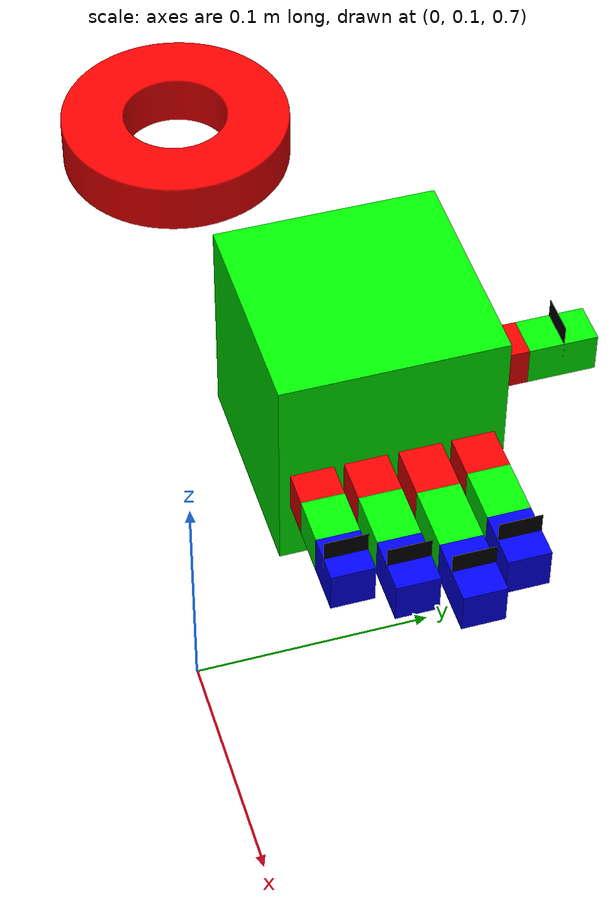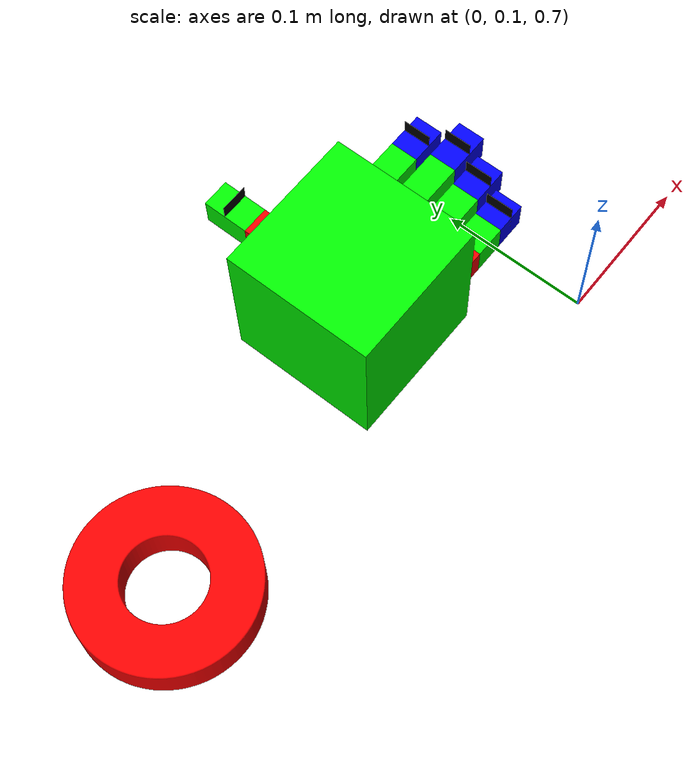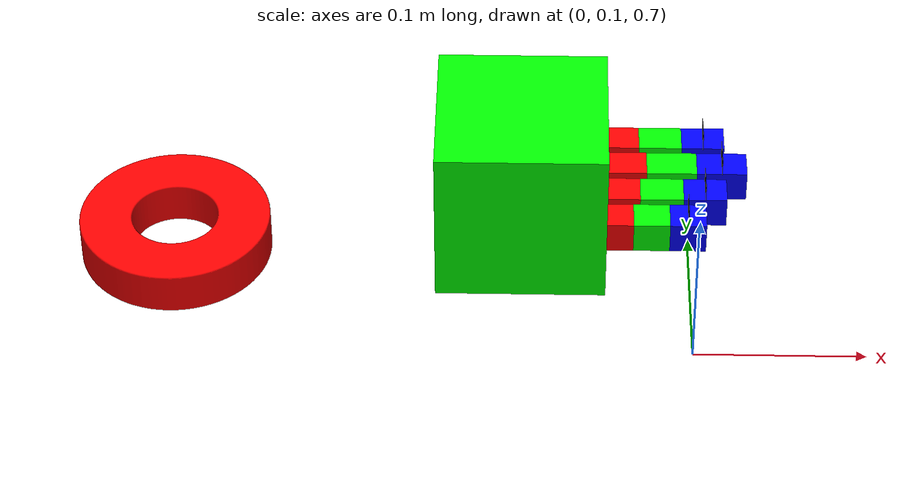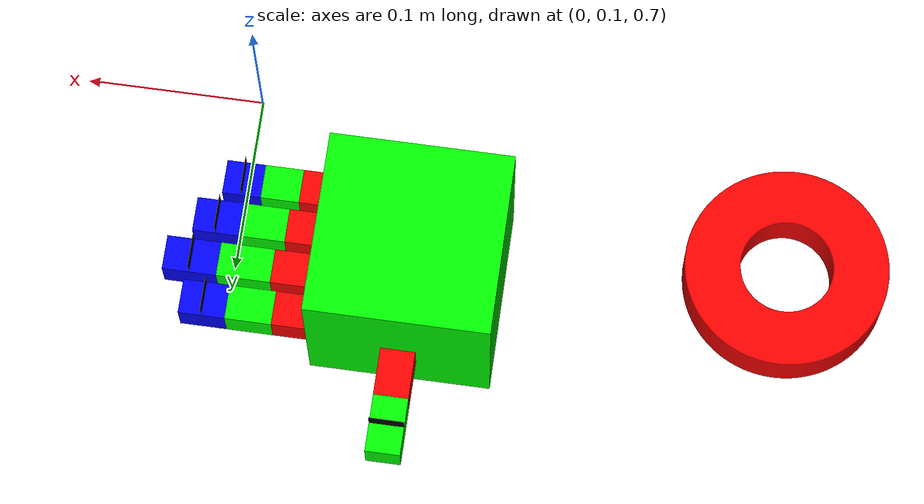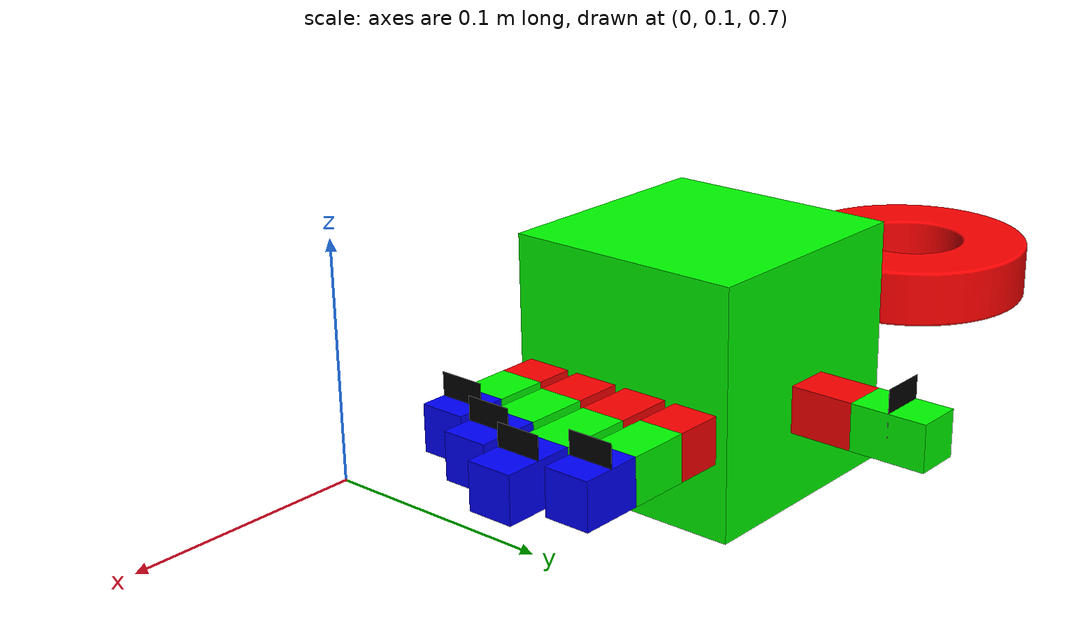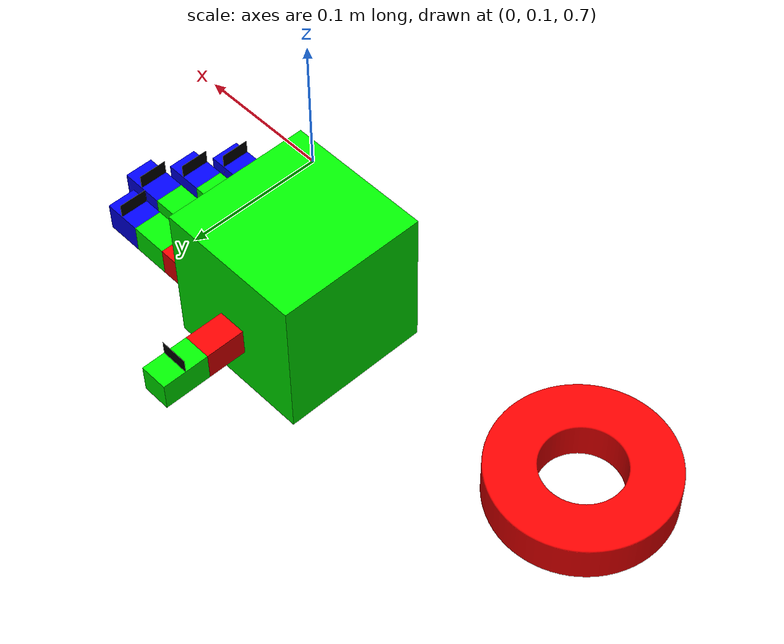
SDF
<sdf version="1.9">
 <world name="Rings">
  <model name="ground_plane">
   <static>true</static>
   <link name="link">
    <collision name="collision">
     <geometry><plane><normal>0 0 1</normal><size>100 100</size></plane></geometry>
    </collision>
    <visual name="visual">
     <geometry><plane><normal>0 0 1</normal><size>100 100</size></plane></geometry>
     <material>
      <ambient>0.8 0.8 0.8 1</ambient>
      <diffuse>0.8 0.8 0.8 1</diffuse>
      <specular>0.8 0.8 0.8 1</specular>
     </material>
    </visual>
    <inertial>
     <mass>1</mass>
     <inertia><ixx>1</ixx><ixy>0</ixy><ixz>0</ixz><iyy>1</iyy><iyz>0</iyz><izz>1</izz></inertia>
    </inertial>
   </link>
  </model>
  <model name="Ring_2">
   <link name="link">
    <visual name="visual">
     <geometry>
      <mesh>
       <uri>file:///home/alves/Documents/Classes/Fall23/MECH495/FinalProject/groupWS/install/teleop_tasks/share/teleop_tasks/worlds/../models/Ring.stl</uri>
      </mesh>
     </geometry>
     <material>
      <ambient>1 0 0 1</ambient>
      <diffuse>1 0 0 1</diffuse>
      <specular>0 0 0 0</specular>
      <emissive>0 0 0 1</emissive>
     </material>
    </visual>
    <collision name="collision">
     <geometry>
      <mesh>
       <uri>file:///home/alves/Documents/Classes/Fall23/MECH495/FinalProject/groupWS/install/teleop_tasks/share/teleop_tasks/worlds/../models/SimpleRing.stl</uri>
      </mesh>
     </geometry>
    </collision>
    <inertial>
     <mass>1</mass>
     <inertia><ixx>1</ixx><ixy>0</ixy><ixz>0</ixz><iyy>1</iyy><iyz>0</iyz><izz>1</izz></inertia>
    </inertial>
   </link>
   <pose>-0.30292 0.171223 0.715 0 -0 -0</pose>
   <static>false</static>
  </model>
  <model name="left_hand">
   <joint name="palm_x" type="prismatic">
    <parent>world</parent>
    <child>world_2</child>
    <axis>
     <xyz>1 0 0</xyz>
     <limit>
      <lower>-15</lower>
      <upper>15</upper>
      <effort>1000</effort>
      <velocity>30</velocity>
      <stiffness>100000000</stiffness>
      <dissipation>1</dissipation>
     </limit>
     <dynamics>
      <spring_reference>0</spring_reference>
      <spring_stiffness>0</spring_stiffness>
      <damping>0</damping>
      <friction>0</friction>
     </dynamics>
    </axis>
   </joint>
   <link name="world_2">
    <inertial>
     <mass>1.0000000000000001e-05</mass>
     <inertia>
      <ixx>3.3333300000000001e-07</ixx>
      <ixy>0</ixy>
      <ixz>0</ixz>
      <iyy>5.2416699999999997e-06</iyy>
      <iyz>0</iyz>
      <izz>5.5083299999999998e-06</izz>
     </inertia>
    </inertial>
    <visual name="world_2_visual">
     <geometry><box><size>0.1 0.1 0.1</size></box></geometry>
     <material><diffuse>0 1 0 0</diffuse><ambient>0 1 0 0</ambient></material>
    </visual>
   </link>
   <joint name="palm_y" type="prismatic">
    <parent>world_2</parent>
    <child>world_3</child>
    <axis>
     <xyz>0 1 0</xyz>
     <limit>
      <lower>-15</lower>
      <upper>15</upper>
      <effort>1000</effort>
      <velocity>30</velocity>
      <stiffness>100000000</stiffness>
      <dissipation>1</dissipation>
     </limit>
     <dynamics>
      <spring_reference>0</spring_reference>
      <spring_stiffness>0</spring_stiffness>
      <damping>0</damping>
      <friction>0</friction>
     </dynamics>
    </axis>
   </joint>
   <link name="world_3">
    <inertial>
     <mass>1.0000000000000001e-05</mass>
     <inertia>
      <ixx>3.3333300000000001e-07</ixx>
      <ixy>0</ixy>
      <ixz>0</ixz>
      <iyy>5.2416699999999997e-06</iyy>
      <iyz>0</iyz>
      <izz>5.5083299999999998e-06</izz>
     </inertia>
    </inertial>
    <visual name="world_3_visual">
     <geometry><box><size>0.1 0.1 0.1</size></box></geometry>
     <material><diffuse>0 1 0 0</diffuse><ambient>0 1 0 0</ambient></material>
    </visual>
   </link>
   <joint name="palm_z" type="prismatic">
    <parent>world_3</parent>
    <child>world_4</child>
    <axis>
     <xyz>0 0 1</xyz>
     <limit>
      <lower>-15</lower>
      <upper>15</upper>
      <effort>1000</effort>
      <velocity>30</velocity>
      <stiffness>100000000</stiffness>
      <dissipation>1</dissipation>
     </limit>
     <dynamics>
      <spring_reference>0</spring_reference>
      <spring_stiffness>0</spring_stiffness>
      <damping>0</damping>
      <friction>0</friction>
     </dynamics>
    </axis>
   </joint>
   <link name="world_4">
    <inertial>
     <mass>1.0000000000000001e-05</mass>
     <inertia>
      <ixx>3.3333300000000001e-07</ixx>
      <ixy>0</ixy>
      <ixz>0</ixz>
      <iyy>5.2416699999999997e-06</iyy>
      <iyz>0</iyz>
      <izz>5.5083299999999998e-06</izz>
     </inertia>
    </inertial>
    <visual name="world_4_visual">
     <geometry><box><size>0.1 0.1 0.1</size></box></geometry>
     <material><diffuse>0 1 0 0</diffuse><ambient>0 1 0 0</ambient></material>
    </visual>
   </link>
   <joint name="palm_roll" type="revolute">
    <parent>world_4</parent>
    <child>world_5</child>
    <axis>
     <xyz>1 0 0</xyz>
     <limit>
      <lower>-10000000000000000</lower>
      <upper>10000000000000000</upper>
      <effort>1000</effort>
      <velocity>30</velocity>
      <stiffness>100000000</stiffness>
      <dissipation>1</dissipation>
     </limit>
     <dynamics>
      <spring_reference>0</spring_reference>
      <spring_stiffness>0</spring_stiffness>
      <damping>0</damping>
      <friction>0</friction>
     </dynamics>
    </axis>
   </joint>
   <link name="world_5">
    <inertial>
     <mass>1.0000000000000001e-05</mass>
     <inertia>
      <ixx>3.3333300000000001e-07</ixx>
      <ixy>0</ixy>
      <ixz>0</ixz>
      <iyy>5.2416699999999997e-06</iyy>
      <iyz>0</iyz>
      <izz>5.5083299999999998e-06</izz>
     </inertia>
    </inertial>
    <visual name="world_5_visual">
     <geometry><box><size>0.1 0.1 0.1</size></box></geometry>
     <material><diffuse>0 1 0 0</diffuse><ambient>0 1 0 0</ambient></material>
    </visual>
   </link>
   <joint name="palm_pitch" type="revolute">
    <parent>world_5</parent>
    <child>world_6</child>
    <axis>
     <xyz>0 1 0</xyz>
     <limit>
      <lower>-10000000000000000</lower>
      <upper>10000000000000000</upper>
      <effort>1000</effort>
      <velocity>30</velocity>
      <stiffness>100000000</stiffness>
      <dissipation>1</dissipation>
     </limit>
     <dynamics>
      <spring_reference>0</spring_reference>
      <spring_stiffness>0</spring_stiffness>
      <damping>0</damping>
      <friction>0</friction>
     </dynamics>
    </axis>
   </joint>
   <link name="world_6">
    <inertial>
     <mass>1.0000000000000001e-05</mass>
     <inertia>
      <ixx>3.3333300000000001e-07</ixx>
      <ixy>0</ixy>
      <ixz>0</ixz>
      <iyy>5.2416699999999997e-06</iyy>
      <iyz>0</iyz>
      <izz>5.5083299999999998e-06</izz>
     </inertia>
    </inertial>
    <visual name="world_6_visual">
     <geometry><box><size>0.1 0.1 0.1</size></box></geometry>
     <material><diffuse>0 1 0 0</diffuse><ambient>0 1 0 0</ambient></material>
    </visual>
   </link>
   <joint name="palm_yaw" type="revolute">
    <parent>world_6</parent>
    <child>palm</child>
    <axis>
     <xyz>0 0 1</xyz>
     <limit>
      <lower>-10000000000000000</lower>
      <upper>10000000000000000</upper>
      <effort>1000</effort>
      <velocity>30</velocity>
      <stiffness>100000000</stiffness>
      <dissipation>1</dissipation>
     </limit>
     <dynamics>
      <spring_reference>0</spring_reference>
      <spring_stiffness>0</spring_stiffness>
      <damping>0</damping>
      <friction>0</friction>
     </dynamics>
    </axis>
   </joint>
   <link name="palm">
    <inertial>
     <mass>1</mass>
     <inertia>
      <ixx>0.033333300000000003</ixx>
      <ixy>0</ixy>
      <ixz>0</ixz>
      <iyy>0.52416700000000005</iyy>
      <iyz>0</iyz>
      <izz>0.55083300000000002</izz>
     </inertia>
    </inertial>
    <collision name="palm_collision">
     <pose>0 0 -0.0127 0 0 0</pose>
     <geometry><box><size>0.0889 0.0889 0.0254</size></box></geometry>
    </collision>
    <visual name="palm_visual">
     <pose>0 0 -0.0127 0 0 0</pose>
     <geometry><box><size>0.0889 0.0889 0.0254</size></box></geometry>
     <material><diffuse>0 1 0 1</diffuse><ambient>0 1 0 1</ambient></material>
    </visual>
   </link>
   <joint name="palm_index_dumb" type="revolute">
    <parent>palm</parent>
    <child>index_dumb</child>
    <axis>
     <xyz>0 0 1</xyz>
     <limit>
      <lower>-10000000000000000</lower>
      <upper>10000000000000000</upper>
      <effort>inf</effort>
      <velocity>inf</velocity>
      <stiffness>100000000</stiffness>
      <dissipation>1</dissipation>
     </limit>
     <dynamics>
      <spring_reference>0</spring_reference>
      <spring_stiffness>0</spring_stiffness>
      <damping>0</damping>
      <friction>0</friction>
     </dynamics>
    </axis>
   </joint>
   <link name="index_dumb">
    <pose>0.04445 0.03556 -0.009525 -0 0 0</pose>
    <inertial>
     <mass>0.10000000000000001</mass>
     <inertia>
      <ixx>0.0033333299999999998</ixx>
      <ixy>0</ixy>
      <ixz>0</ixz>
      <iyy>0.052416699999999997</iyy>
      <iyz>0</iyz>
      <izz>0.055083300000000002</izz>
     </inertia>
    </inertial>
    <visual name="index_dumb_visual">
     <pose>5e-05 0 0 0 0 0</pose>
     <geometry><box><size>0.0001 0.01905 0.01905</size></box></geometry>
     <material><diffuse>0 0 0 0</diffuse><ambient>0 0 0 0</ambient></material>
    </visual>
   </link>
   <joint name="index_dumb_index_1" type="revolute">
    <parent>index_dumb</parent>
    <child>index_1</child>
    <axis>
     <xyz>0 -1 0</xyz>
     <limit>
      <lower>-10000000000000000</lower>
      <upper>10000000000000000</upper>
      <effort>1000</effort>
      <velocity>30</velocity>
      <stiffness>100000000</stiffness>
      <dissipation>1</dissipation>
     </limit>
     <dynamics>
      <spring_reference>0</spring_reference>
      <spring_stiffness>0</spring_stiffness>
      <damping>0</damping>
      <friction>0</friction>
     </dynamics>
    </axis>
   </joint>
   <link name="index_1">
    <pose>0.04445 0.03556 -0.009525 -0 0 0</pose>
    <inertial>
     <mass>0.10000000000000001</mass>
     <inertia>
      <ixx>0.0033333299999999998</ixx>
      <ixy>0</ixy>
      <ixz>0</ixz>
      <iyy>0.052416699999999997</iyy>
      <iyz>0</iyz>
      <izz>0.055083300000000002</izz>
     </inertia>
    </inertial>
    <collision name="index_1_collision_collision">
     <pose>0.0127 0 0 0 0 0</pose>
     <geometry><box><size>0.0254 0.01905 0.01905</size></box></geometry>
    </collision>
    <visual name="index_1_visual">
     <pose>0.0127 0 0 0 0 0</pose>
     <geometry><box><size>0.0254 0.01905 0.01905</size></box></geometry>
     <material><diffuse>1 0 0 1</diffuse><ambient>1 0 0 1</ambient></material>
    </visual>
   </link>
   <joint name="index_1_index_2" type="revolute">
    <parent>index_1</parent>
    <child>index_2</child>
    <axis>
     <xyz>0 -1 0</xyz>
     <limit>
      <lower>-10000000000000000</lower>
      <upper>10000000000000000</upper>
      <effort>1000</effort>
      <velocity>30</velocity>
      <stiffness>100000000</stiffness>
      <dissipation>1</dissipation>
     </limit>
     <dynamics>
      <spring_reference>0</spring_reference>
      <spring_stiffness>0</spring_stiffness>
      <damping>0</damping>
      <friction>0</friction>
     </dynamics>
    </axis>
   </joint>
   <link name="index_2">
    <pose>0.06985 0.03556 -0.009525 -0 0 0</pose>
    <inertial>
     <mass>0.10000000000000001</mass>
     <inertia>
      <ixx>0.0033333299999999998</ixx>
      <ixy>0</ixy>
      <ixz>0</ixz>
      <iyy>0.052416699999999997</iyy>
      <iyz>0</iyz>
      <izz>0.055083300000000002</izz>
     </inertia>
    </inertial>
    <collision name="index_2_collision_collision">
     <pose>0.0127 0 0 0 0 0</pose>
     <geometry><box><size>0.0254 0.01905 0.01905</size></box></geometry>
    </collision>
    <visual name="index_2_visual">
     <pose>0.0127 0 0 0 0 0</pose>
     <geometry><box><size>0.0254 0.01905 0.01905</size></box></geometry>
     <material><diffuse>0 1 0 1</diffuse><ambient>0 1 0 1</ambient></material>
    </visual>
   </link>
   <joint name="index_2_index_3" type="revolute">
    <parent>index_2</parent>
    <child>index_3</child>
    <axis>
     <xyz>0 -1 0</xyz>
     <limit>
      <lower>-10000000000000000</lower>
      <upper>10000000000000000</upper>
      <effort>1000</effort>
      <velocity>30</velocity>
      <stiffness>100000000</stiffness>
      <dissipation>1</dissipation>
     </limit>
     <dynamics>
      <spring_reference>0</spring_reference>
      <spring_stiffness>0</spring_stiffness>
      <damping>0</damping>
      <friction>0</friction>
     </dynamics>
    </axis>
   </joint>
   <link name="index_3">
    <pose>0.09525 0.03556 -0.009525 -0 0 0</pose>
    <inertial>
     <mass>0.10000000000000001</mass>
     <inertia>
      <ixx>0.0033333299999999998</ixx>
      <ixy>0</ixy>
      <ixz>0</ixz>
      <iyy>0.052416699999999997</iyy>
      <iyz>0</iyz>
      <izz>0.055083300000000002</izz>
     </inertia>
    </inertial>
    <collision name="index_3_collision_collision">
     <pose>0.0127 0 0 0 0 0</pose>
     <geometry><box><size>0.0254 0.01905 0.01905</size></box></geometry>
    </collision>
    <visual name="index_3_visual">
     <pose>0.0127 0 0 0 0 0</pose>
     <geometry><box><size>0.0254 0.01905 0.01905</size></box></geometry>
     <material><diffuse>0 0 1 1</diffuse><ambient>0 0 1 1</ambient></material>
    </visual>
   </link>
   <joint name="index_3_index_tip" type="fixed">
    <parent>index_3</parent>
    <child>index_tip</child>
    <axis>
     <xyz>0 0 1</xyz>
     <limit>
      <lower>-10000000000000000</lower>
      <upper>10000000000000000</upper>
      <effort>inf</effort>
      <velocity>inf</velocity>
      <stiffness>100000000</stiffness>
      <dissipation>1</dissipation>
     </limit>
     <dynamics>
      <spring_reference>0</spring_reference>
      <spring_stiffness>0</spring_stiffness>
      <damping>0</damping>
      <friction>0</friction>
     </dynamics>
    </axis>
    <physics>
     <provide_feedback>true</provide_feedback>
     <ode><limit><cfm>0</cfm><erp>0.20000000000000001</erp></limit><provide_feedback>true</provide_feedback></ode>
    </physics>
    <sensor name="force_torque_sensor" type="force_torque">
     <topic>force_torque</topic>
     <update_rate>100</update_rate>
     <enable_metrics>false</enable_metrics>
    </sensor>
   </joint>
   <link name="index_tip">
    <pose>0.10795 0.03556 0 -0 0 0</pose>
    <inertial>
     <mass>0.10000000000000001</mass>
     <inertia>
      <ixx>0.0033333299999999998</ixx>
      <ixy>0</ixy>
      <ixz>0</ixz>
      <iyy>0.052416699999999997</iyy>
      <iyz>0</iyz>
      <izz>0.055083300000000002</izz>
     </inertia>
    </inertial>
    <visual name="index_tip_visual">
     <pose>5e-05 0 0 0 0 0</pose>
     <geometry><box><size>0.0001 0.01905 0.01905</size></box></geometry>
     <material><diffuse>0 0 0 0</diffuse><ambient>0 0 0 0</ambient></material>
    </visual>
   </link>
   <joint name="palm_middle_dumb" type="revolute">
    <parent>palm</parent>
    <child>middle_dumb</child>
    <axis>
     <xyz>0 0 1</xyz>
     <limit>
      <lower>-10000000000000000</lower>
      <upper>10000000000000000</upper>
      <effort>inf</effort>
      <velocity>inf</velocity>
      <stiffness>100000000</stiffness>
      <dissipation>1</dissipation>
     </limit>
     <dynamics>
      <spring_reference>0</spring_reference>
      <spring_stiffness>0</spring_stiffness>
      <damping>0</damping>
      <friction>0</friction>
     </dynamics>
    </axis>
   </joint>
   <link name="middle_dumb">
    <pose>0.04445 0.012001 -0.009525 -0 0 0</pose>
    <inertial>
     <mass>0.10000000000000001</mass>
     <inertia>
      <ixx>0.0033333299999999998</ixx>
      <ixy>0</ixy>
      <ixz>0</ixz>
      <iyy>0.052416699999999997</iyy>
      <iyz>0</iyz>
      <izz>0.055083300000000002</izz>
     </inertia>
    </inertial>
    <visual name="middle_dumb_visual">
     <pose>5e-05 0 0 0 0 0</pose>
     <geometry><box><size>0.0001 0.01905 0.01905</size></box></geometry>
     <material><diffuse>0 0 0 0</diffuse><ambient>0 0 0 0</ambient></material>
    </visual>
   </link>
   <joint name="middle_dumb_middle_1" type="revolute">
    <parent>middle_dumb</parent>
    <child>middle_1</child>
    <axis>
     <xyz>0 -1 0</xyz>
     <limit>
      <lower>-10000000000000000</lower>
      <upper>10000000000000000</upper>
      <effort>1000</effort>
      <velocity>30</velocity>
      <stiffness>100000000</stiffness>
      <dissipation>1</dissipation>
     </limit>
     <dynamics>
      <spring_reference>0</spring_reference>
      <spring_stiffness>0</spring_stiffness>
      <damping>0</damping>
      <friction>0</friction>
     </dynamics>
    </axis>
   </joint>
   <link name="middle_1">
    <pose>0.04445 0.012001 -0.009525 -0 0 0</pose>
    <inertial>
     <mass>0.10000000000000001</mass>
     <inertia>
      <ixx>0.0033333299999999998</ixx>
      <ixy>0</ixy>
      <ixz>0</ixz>
      <iyy>0.052416699999999997</iyy>
      <iyz>0</iyz>
      <izz>0.055083300000000002</izz>
     </inertia>
    </inertial>
    <collision name="middle_1_collision_collision">
     <pose>0.01481666666666667 0 0 0 0 0</pose>
     <geometry><box><size>0.029633 0.01905 0.01905</size></box></geometry>
    </collision>
    <visual name="middle_1_visual">
     <pose>0.01481666666666667 0 0 0 0 0</pose>
     <geometry><box><size>0.029633 0.01905 0.01905</size></box></geometry>
     <material><diffuse>1 0 0 1</diffuse><ambient>1 0 0 1</ambient></material>
    </visual>
   </link>
   <joint name="middle_1_middle_2" type="revolute">
    <parent>middle_1</parent>
    <child>middle_2</child>
    <axis>
     <xyz>0 -1 0</xyz>
     <limit>
      <lower>-10000000000000000</lower>
      <upper>10000000000000000</upper>
      <effort>1000</effort>
      <velocity>30</velocity>
      <stiffness>100000000</stiffness>
      <dissipation>1</dissipation>
     </limit>
     <dynamics>
      <spring_reference>0</spring_reference>
      <spring_stiffness>0</spring_stiffness>
      <damping>0</damping>
      <friction>0</friction>
     </dynamics>
    </axis>
   </joint>
   <link name="middle_2">
    <pose>0.074084 0.012001 -0.009525 -0 0 0</pose>
    <inertial>
     <mass>0.10000000000000001</mass>
     <inertia>
      <ixx>0.0033333299999999998</ixx>
      <ixy>0</ixy>
      <ixz>0</ixz>
      <iyy>0.052416699999999997</iyy>
      <iyz>0</iyz>
      <izz>0.055083300000000002</izz>
     </inertia>
    </inertial>
    <collision name="middle_2_collision_collision">
     <pose>0.01481666666666667 0 0 0 0 0</pose>
     <geometry><box><size>0.029633 0.01905 0.01905</size></box></geometry>
    </collision>
    <visual name="middle_2_visual">
     <pose>0.01481666666666667 0 0 0 0 0</pose>
     <geometry><box><size>0.029633 0.01905 0.01905</size></box></geometry>
     <material><diffuse>0 1 0 1</diffuse><ambient>0 1 0 1</ambient></material>
    </visual>
   </link>
   <joint name="middle_2_middle_3" type="revolute">
    <parent>middle_2</parent>
    <child>middle_3</child>
    <axis>
     <xyz>0 -1 0</xyz>
     <limit>
      <lower>-10000000000000000</lower>
      <upper>10000000000000000</upper>
      <effort>1000</effort>
      <velocity>30</velocity>
      <stiffness>100000000</stiffness>
      <dissipation>1</dissipation>
     </limit>
     <dynamics>
      <spring_reference>0</spring_reference>
      <spring_stiffness>0</spring_stiffness>
      <damping>0</damping>
      <friction>0</friction>
     </dynamics>
    </axis>
   </joint>
   <link name="middle_3">
    <pose>0.103717 0.012001 -0.009525 -0 0 0</pose>
    <inertial>
     <mass>0.10000000000000001</mass>
     <inertia>
      <ixx>0.0033333299999999998</ixx>
      <ixy>0</ixy>
      <ixz>0</ixz>
      <iyy>0.052416699999999997</iyy>
      <iyz>0</iyz>
      <izz>0.055083300000000002</izz>
     </inertia>
    </inertial>
    <collision name="middle_3_collision_collision">
     <pose>0.01481666666666667 0 0 0 0 0</pose>
     <geometry><box><size>0.029633 0.01905 0.01905</size></box></geometry>
    </collision>
    <visual name="middle_3_visual">
     <pose>0.01481666666666667 0 0 0 0 0</pose>
     <geometry><box><size>0.029633 0.01905 0.01905</size></box></geometry>
     <material><diffuse>0 0 1 1</diffuse><ambient>0 0 1 1</ambient></material>
    </visual>
   </link>
   <joint name="middle_3_middle_tip" type="fixed">
    <parent>middle_3</parent>
    <child>middle_tip</child>
    <axis>
     <xyz>0 0 1</xyz>
     <limit>
      <lower>-10000000000000000</lower>
      <upper>10000000000000000</upper>
      <effort>inf</effort>
      <velocity>inf</velocity>
      <stiffness>100000000</stiffness>
      <dissipation>1</dissipation>
     </limit>
     <dynamics>
      <spring_reference>0</spring_reference>
      <spring_stiffness>0</spring_stiffness>
      <damping>0</damping>
      <friction>0</friction>
     </dynamics>
    </axis>
    <physics>
     <provide_feedback>true</provide_feedback>
     <ode><limit><cfm>0</cfm><erp>0.20000000000000001</erp></limit><provide_feedback>true</provide_feedback></ode>
    </physics>
    <sensor name="force_torque_sensor" type="force_torque">
     <topic>force_torque</topic>
     <update_rate>100</update_rate>
     <enable_metrics>false</enable_metrics>
    </sensor>
   </joint>
   <link name="middle_tip">
    <pose>0.118534 0.012001 0 -0 0 0</pose>
    <inertial>
     <mass>0.10000000000000001</mass>
     <inertia>
      <ixx>0.0033333299999999998</ixx>
      <ixy>0</ixy>
      <ixz>0</ixz>
      <iyy>0.052416699999999997</iyy>
      <iyz>0</iyz>
      <izz>0.055083300000000002</izz>
     </inertia>
    </inertial>
    <visual name="middle_tip_visual">
     <pose>5e-05 0 0 0 0 0</pose>
     <geometry><box><size>0.0001 0.01905 0.01905</size></box></geometry>
     <material><diffuse>0 0 0 0</diffuse><ambient>0 0 0 0</ambient></material>
    </visual>
   </link>
   <joint name="palm_pinky_dumb" type="revolute">
    <parent>palm</parent>
    <child>pinky_dumb</child>
    <axis>
     <xyz>0 0 1</xyz>
     <limit>
      <lower>-10000000000000000</lower>
      <upper>10000000000000000</upper>
      <effort>inf</effort>
      <velocity>inf</velocity>
      <stiffness>100000000</stiffness>
      <dissipation>1</dissipation>
     </limit>
     <dynamics>
      <spring_reference>0</spring_reference>
      <spring_stiffness>0</spring_stiffness>
      <damping>0</damping>
      <friction>0</friction>
     </dynamics>
    </axis>
   </joint>
   <link name="pinky_dumb">
    <pose>0.04445 -0.03556 -0.009525 -0 0 0</pose>
    <inertial>
     <mass>0.10000000000000001</mass>
     <inertia>
      <ixx>0.0033333299999999998</ixx>
      <ixy>0</ixy>
      <ixz>0</ixz>
      <iyy>0.052416699999999997</iyy>
      <iyz>0</iyz>
      <izz>0.055083300000000002</izz>
     </inertia>
    </inertial>
    <visual name="pinky_dumb_visual">
     <pose>5e-05 0 0 0 0 0</pose>
     <geometry><box><size>0.0001 0.01905 0.01905</size></box></geometry>
     <material><diffuse>0 0 0 0</diffuse><ambient>0 0 0 0</ambient></material>
    </visual>
   </link>
   <joint name="pinky_dumb_pinky_1" type="revolute">
    <parent>pinky_dumb</parent>
    <child>pinky_1</child>
    <axis>
     <xyz>0 -1 0</xyz>
     <limit>
      <lower>-10000000000000000</lower>
      <upper>10000000000000000</upper>
      <effort>1000</effort>
      <velocity>30</velocity>
      <stiffness>100000000</stiffness>
      <dissipation>1</dissipation>
     </limit>
     <dynamics>
      <spring_reference>0</spring_reference>
      <spring_stiffness>0</spring_stiffness>
      <damping>0</damping>
      <friction>0</friction>
     </dynamics>
    </axis>
   </joint>
   <link name="pinky_1">
    <pose>0.04445 -0.03556 -0.009525 -0 0 0</pose>
    <inertial>
     <mass>0.10000000000000001</mass>
     <inertia>
      <ixx>0.0033333299999999998</ixx>
      <ixy>0</ixy>
      <ixz>0</ixz>
      <iyy>0.052416699999999997</iyy>
      <iyz>0</iyz>
      <izz>0.055083300000000002</izz>
     </inertia>
    </inertial>
    <collision name="pinky_1_collision_collision">
     <pose>0.01058333333333333 0 0 0 0 0</pose>
     <geometry><box><size>0.021167 0.01905 0.01905</size></box></geometry>
    </collision>
    <visual name="pinky_1_visual">
     <pose>0.01058333333333333 0 0 0 0 0</pose>
     <geometry><box><size>0.021167 0.01905 0.01905</size></box></geometry>
     <material><diffuse>1 0 0 1</diffuse><ambient>1 0 0 1</ambient></material>
    </visual>
   </link>
   <joint name="pinky_1_pinky_2" type="revolute">
    <parent>pinky_1</parent>
    <child>pinky_2</child>
    <axis>
     <xyz>0 -1 0</xyz>
     <limit>
      <lower>-10000000000000000</lower>
      <upper>10000000000000000</upper>
      <effort>1000</effort>
      <velocity>30</velocity>
      <stiffness>100000000</stiffness>
      <dissipation>1</dissipation>
     </limit>
     <dynamics>
      <spring_reference>0</spring_reference>
      <spring_stiffness>0</spring_stiffness>
      <damping>0</damping>
      <friction>0</friction>
     </dynamics>
    </axis>
   </joint>
   <link name="pinky_2">
    <pose>0.065617 -0.03556 -0.009525 -0 0 0</pose>
    <inertial>
     <mass>0.10000000000000001</mass>
     <inertia>
      <ixx>0.0033333299999999998</ixx>
      <ixy>0</ixy>
      <ixz>0</ixz>
      <iyy>0.052416699999999997</iyy>
      <iyz>0</iyz>
      <izz>0.055083300000000002</izz>
     </inertia>
    </inertial>
    <collision name="pinky_2_collision_collision">
     <pose>0.01058333333333333 0 0 0 0 0</pose>
     <geometry><box><size>0.021167 0.01905 0.01905</size></box></geometry>
    </collision>
    <visual name="pinky_2_visual">
     <pose>0.01058333333333333 0 0 0 0 0</pose>
     <geometry><box><size>0.021167 0.01905 0.01905</size></box></geometry>
     <material><diffuse>0 1 0 1</diffuse><ambient>0 1 0 1</ambient></material>
    </visual>
   </link>
   <joint name="pinky_2_pinky_3" type="revolute">
    <parent>pinky_2</parent>
    <child>pinky_3</child>
    <axis>
     <xyz>0 -1 0</xyz>
     <limit>
      <lower>-10000000000000000</lower>
      <upper>10000000000000000</upper>
      <effort>1000</effort>
      <velocity>30</velocity>
      <stiffness>100000000</stiffness>
      <dissipation>1</dissipation>
     </limit>
     <dynamics>
      <spring_reference>0</spring_reference>
      <spring_stiffness>0</spring_stiffness>
      <damping>0</damping>
      <friction>0</friction>
     </dynamics>
    </axis>
   </joint>
   <link name="pinky_3">
    <pose>0.086784 -0.03556 -0.009525 -0 0 0</pose>
    <inertial>
     <mass>0.10000000000000001</mass>
     <inertia>
      <ixx>0.0033333299999999998</ixx>
      <ixy>0</ixy>
      <ixz>0</ixz>
      <iyy>0.052416699999999997</iyy>
      <iyz>0</iyz>
      <izz>0.055083300000000002</izz>
     </inertia>
    </inertial>
    <collision name="pinky_3_collision_collision">
     <pose>0.01058333333333333 0 0 0 0 0</pose>
     <geometry><box><size>0.021167 0.01905 0.01905</size></box></geometry>
    </collision>
    <visual name="pinky_3_visual">
     <pose>0.01058333333333333 0 0 0 0 0</pose>
     <geometry><box><size>0.021167 0.01905 0.01905</size></box></geometry>
     <material><diffuse>0 0 1 1</diffuse><ambient>0 0 1 1</ambient></material>
    </visual>
   </link>
   <joint name="pinky_3_pinky_tip" type="fixed">
    <parent>pinky_3</parent>
    <child>pinky_tip</child>
    <axis>
     <xyz>0 0 1</xyz>
     <limit>
      <lower>-10000000000000000</lower>
      <upper>10000000000000000</upper>
      <effort>inf</effort>
      <velocity>inf</velocity>
      <stiffness>100000000</stiffness>
      <dissipation>1</dissipation>
     </limit>
     <dynamics>
      <spring_reference>0</spring_reference>
      <spring_stiffness>0</spring_stiffness>
      <damping>0</damping>
      <friction>0</friction>
     </dynamics>
    </axis>
    <physics>
     <provide_feedback>true</provide_feedback>
     <ode><limit><cfm>0</cfm><erp>0.20000000000000001</erp></limit><provide_feedback>true</provide_feedback></ode>
    </physics>
    <sensor name="force_torque_sensor" type="force_torque">
     <topic>force_torque</topic>
     <update_rate>100</update_rate>
     <enable_metrics>false</enable_metrics>
    </sensor>
   </joint>
   <link name="pinky_tip">
    <pose>0.097367 -0.03556 0 -0 0 0</pose>
    <inertial>
     <mass>0.10000000000000001</mass>
     <inertia>
      <ixx>0.0033333299999999998</ixx>
      <ixy>0</ixy>
      <ixz>0</ixz>
      <iyy>0.052416699999999997</iyy>
      <iyz>0</iyz>
      <izz>0.055083300000000002</izz>
     </inertia>
    </inertial>
    <visual name="pinky_tip_visual">
     <pose>5e-05 0 0 0 0 0</pose>
     <geometry><box><size>0.0001 0.01905 0.01905</size></box></geometry>
     <material><diffuse>0 0 0 0</diffuse><ambient>0 0 0 0</ambient></material>
    </visual>
   </link>
   <joint name="palm_ring_dumb" type="revolute">
    <parent>palm</parent>
    <child>ring_dumb</child>
    <axis>
     <xyz>0 0 1</xyz>
     <limit>
      <lower>-10000000000000000</lower>
      <upper>10000000000000000</upper>
      <effort>inf</effort>
      <velocity>inf</velocity>
      <stiffness>100000000</stiffness>
      <dissipation>1</dissipation>
     </limit>
     <dynamics>
      <spring_reference>0</spring_reference>
      <spring_stiffness>0</spring_stiffness>
      <damping>0</damping>
      <friction>0</friction>
     </dynamics>
    </axis>
   </joint>
   <link name="ring_dumb">
    <pose>0.04445 -0.012002 -0.009525 -0 0 0</pose>
    <inertial>
     <mass>0.10000000000000001</mass>
     <inertia>
      <ixx>0.0033333299999999998</ixx>
      <ixy>0</ixy>
      <ixz>0</ixz>
      <iyy>0.052416699999999997</iyy>
      <iyz>0</iyz>
      <izz>0.055083300000000002</izz>
     </inertia>
    </inertial>
    <visual name="ring_dumb_visual">
     <pose>5e-05 0 0 0 0 0</pose>
     <geometry><box><size>0.0001 0.01905 0.01905</size></box></geometry>
     <material><diffuse>0 0 0 0</diffuse><ambient>0 0 0 0</ambient></material>
    </visual>
   </link>
   <joint name="ring_dumb_ring_1" type="revolute">
    <parent>ring_dumb</parent>
    <child>ring_1</child>
    <axis>
     <xyz>0 -1 0</xyz>
     <limit>
      <lower>-10000000000000000</lower>
      <upper>10000000000000000</upper>
      <effort>1000</effort>
      <velocity>30</velocity>
      <stiffness>100000000</stiffness>
      <dissipation>1</dissipation>
     </limit>
     <dynamics>
      <spring_reference>0</spring_reference>
      <spring_stiffness>0</spring_stiffness>
      <damping>0</damping>
      <friction>0</friction>
     </dynamics>
    </axis>
   </joint>
   <link name="ring_1">
    <pose>0.04445 -0.012002 -0.009525 -0 0 0</pose>
    <inertial>
     <mass>0.10000000000000001</mass>
     <inertia>
      <ixx>0.0033333299999999998</ixx>
      <ixy>0</ixy>
      <ixz>0</ixz>
      <iyy>0.052416699999999997</iyy>
      <iyz>0</iyz>
      <izz>0.055083300000000002</izz>
     </inertia>
    </inertial>
    <collision name="ring_1_collision_collision">
     <pose>0.0127 0 0 0 0 0</pose>
     <geometry><box><size>0.0254 0.01905 0.01905</size></box></geometry>
    </collision>
    <visual name="ring_1_visual">
     <pose>0.0127 0 0 0 0 0</pose>
     <geometry><box><size>0.0254 0.01905 0.01905</size></box></geometry>
     <material><diffuse>1 0 0 1</diffuse><ambient>1 0 0 1</ambient></material>
    </visual>
   </link>
   <joint name="ring_1_ring_2" type="revolute">
    <parent>ring_1</parent>
    <child>ring_2</child>
    <axis>
     <xyz>0 -1 0</xyz>
     <limit>
      <lower>-10000000000000000</lower>
      <upper>10000000000000000</upper>
      <effort>1000</effort>
      <velocity>30</velocity>
      <stiffness>100000000</stiffness>
      <dissipation>1</dissipation>
     </limit>
     <dynamics>
      <spring_reference>0</spring_reference>
      <spring_stiffness>0</spring_stiffness>
      <damping>0</damping>
      <friction>0</friction>
     </dynamics>
    </axis>
   </joint>
   <link name="ring_2">
    <pose>0.06985 -0.012002 -0.009525 -0 0 0</pose>
    <inertial>
     <mass>0.10000000000000001</mass>
     <inertia>
      <ixx>0.0033333299999999998</ixx>
      <ixy>0</ixy>
      <ixz>0</ixz>
      <iyy>0.052416699999999997</iyy>
      <iyz>0</iyz>
      <izz>0.055083300000000002</izz>
     </inertia>
    </inertial>
    <collision name="ring_2_collision_collision">
     <pose>0.0127 0 0 0 0 0</pose>
     <geometry><box><size>0.0254 0.01905 0.01905</size></box></geometry>
    </collision>
    <visual name="ring_2_visual">
     <pose>0.0127 0 0 0 0 0</pose>
     <geometry><box><size>0.0254 0.01905 0.01905</size></box></geometry>
     <material><diffuse>0 1 0 1</diffuse><ambient>0 1 0 1</ambient></material>
    </visual>
   </link>
   <joint name="ring_2_ring_3" type="revolute">
    <parent>ring_2</parent>
    <child>ring_3</child>
    <axis>
     <xyz>0 -1 0</xyz>
     <limit>
      <lower>-10000000000000000</lower>
      <upper>10000000000000000</upper>
      <effort>1000</effort>
      <velocity>30</velocity>
      <stiffness>100000000</stiffness>
      <dissipation>1</dissipation>
     </limit>
     <dynamics>
      <spring_reference>0</spring_reference>
      <spring_stiffness>0</spring_stiffness>
      <damping>0</damping>
      <friction>0</friction>
     </dynamics>
    </axis>
   </joint>
   <link name="ring_3">
    <pose>0.09525 -0.012002 -0.009525 -0 0 0</pose>
    <inertial>
     <mass>0.10000000000000001</mass>
     <inertia>
      <ixx>0.0033333299999999998</ixx>
      <ixy>0</ixy>
      <ixz>0</ixz>
      <iyy>0.052416699999999997</iyy>
      <iyz>0</iyz>
      <izz>0.055083300000000002</izz>
     </inertia>
    </inertial>
    <collision name="ring_3_collision_collision">
     <pose>0.0127 0 0 0 0 0</pose>
     <geometry><box><size>0.0254 0.01905 0.01905</size></box></geometry>
    </collision>
    <visual name="ring_3_visual">
     <pose>0.0127 0 0 0 0 0</pose>
     <geometry><box><size>0.0254 0.01905 0.01905</size></box></geometry>
     <material><diffuse>0 0 1 1</diffuse><ambient>0 0 1 1</ambient></material>
    </visual>
   </link>
   <joint name="ring_3_ring_tip" type="fixed">
    <parent>ring_3</parent>
    <child>ring_tip</child>
    <axis>
     <xyz>0 0 1</xyz>
     <limit>
      <lower>-10000000000000000</lower>
      <upper>10000000000000000</upper>
      <effort>inf</effort>
      <velocity>inf</velocity>
      <stiffness>100000000</stiffness>
      <dissipation>1</dissipation>
     </limit>
     <dynamics>
      <spring_reference>0</spring_reference>
      <spring_stiffness>0</spring_stiffness>
      <damping>0</damping>
      <friction>0</friction>
     </dynamics>
    </axis>
    <physics>
     <provide_feedback>true</provide_feedback>
     <ode><limit><cfm>0</cfm><erp>0.20000000000000001</erp></limit><provide_feedback>true</provide_feedback></ode>
    </physics>
    <sensor name="force_torque_sensor" type="force_torque">
     <topic>force_torque</topic>
     <update_rate>100</update_rate>
     <enable_metrics>false</enable_metrics>
    </sensor>
   </joint>
   <link name="ring_tip">
    <pose>0.10795 -0.012002 0 -0 0 0</pose>
    <inertial>
     <mass>0.10000000000000001</mass>
     <inertia>
      <ixx>0.0033333299999999998</ixx>
      <ixy>0</ixy>
      <ixz>0</ixz>
      <iyy>0.052416699999999997</iyy>
      <iyz>0</iyz>
      <izz>0.055083300000000002</izz>
     </inertia>
    </inertial>
    <visual name="ring_tip_visual">
     <pose>5e-05 0 0 0 0 0</pose>
     <geometry><box><size>0.0001 0.01905 0.01905</size></box></geometry>
     <material><diffuse>0 0 0 0</diffuse><ambient>0 0 0 0</ambient></material>
    </visual>
   </link>
   <joint name="palm_thumb_dumb" type="revolute">
    <parent>palm</parent>
    <child>thumb_dumb</child>
    <axis>
     <xyz>0 0 1</xyz>
     <limit>
      <lower>-10000000000000000</lower>
      <upper>10000000000000000</upper>
      <effort>inf</effort>
      <velocity>inf</velocity>
      <stiffness>100000000</stiffness>
      <dissipation>1</dissipation>
     </limit>
     <dynamics>
      <spring_reference>0</spring_reference>
      <spring_stiffness>0</spring_stiffness>
      <damping>0</damping>
      <friction>0</friction>
     </dynamics>
    </axis>
   </joint>
   <link name="thumb_dumb">
    <pose>0 0.04445 -0.009525 0 0 1.5708</pose>
    <inertial>
     <mass>0.10000000000000001</mass>
     <inertia>
      <ixx>0.0033333299999999998</ixx>
      <ixy>0</ixy>
      <ixz>0</ixz>
      <iyy>0.052416699999999997</iyy>
      <iyz>0</iyz>
      <izz>0.055083300000000002</izz>
     </inertia>
    </inertial>
    <visual name="thumb_dumb_visual">
     <pose>5e-05 0 0 0 0 0</pose>
     <geometry><box><size>0.0001 0.01905 0.01905</size></box></geometry>
     <material><diffuse>0 0 0 0</diffuse><ambient>0 0 0 0</ambient></material>
    </visual>
   </link>
   <joint name="thumb_dumb_thumb_1" type="revolute">
    <parent>thumb_dumb</parent>
    <child>thumb_1</child>
    <axis>
     <xyz>0 -1 0</xyz>
     <limit>
      <lower>-10000000000000000</lower>
      <upper>10000000000000000</upper>
      <effort>1000</effort>
      <velocity>30</velocity>
      <stiffness>100000000</stiffness>
      <dissipation>1</dissipation>
     </limit>
     <dynamics>
      <spring_reference>0</spring_reference>
      <spring_stiffness>0</spring_stiffness>
      <damping>0</damping>
      <friction>0</friction>
     </dynamics>
    </axis>
   </joint>
   <link name="thumb_1">
    <pose>0 0.04445 -0.009525 0 0 1.5708</pose>
    <inertial>
     <mass>0.10000000000000001</mass>
     <inertia>
      <ixx>0.0033333299999999998</ixx>
      <ixy>0</ixy>
      <ixz>0</ixz>
      <iyy>0.052416699999999997</iyy>
      <iyz>0</iyz>
      <izz>0.055083300000000002</izz>
     </inertia>
    </inertial>
    <collision name="thumb_1_collision_collision">
     <pose>0.015875 0 0 0 0 0</pose>
     <geometry><box><size>0.03175 0.01905 0.01905</size></box></geometry>
    </collision>
    <visual name="thumb_1_visual">
     <pose>0.015875 0 0 0 0 0</pose>
     <geometry><box><size>0.03175 0.01905 0.01905</size></box></geometry>
     <material><diffuse>1 0 0 1</diffuse><ambient>1 0 0 1</ambient></material>
    </visual>
   </link>
   <joint name="thumb_1_thumb_2" type="revolute">
    <parent>thumb_1</parent>
    <child>thumb_2</child>
    <axis>
     <xyz>0 -1 0</xyz>
     <limit>
      <lower>-10000000000000000</lower>
      <upper>10000000000000000</upper>
      <effort>1000</effort>
      <velocity>30</velocity>
      <stiffness>100000000</stiffness>
      <dissipation>1</dissipation>
     </limit>
     <dynamics>
      <spring_reference>0</spring_reference>
      <spring_stiffness>0</spring_stiffness>
      <damping>0</damping>
      <friction>0</friction>
     </dynamics>
    </axis>
   </joint>
   <link name="thumb_2">
    <pose>0 0.0762 -0.009525 0 0 1.5708</pose>
    <inertial>
     <mass>0.10000000000000001</mass>
     <inertia>
      <ixx>0.0033333299999999998</ixx>
      <ixy>0</ixy>
      <ixz>0</ixz>
      <iyy>0.052416699999999997</iyy>
      <iyz>0</iyz>
      <izz>0.055083300000000002</izz>
     </inertia>
    </inertial>
    <collision name="thumb_2_collision_collision">
     <pose>0.015875 0 0 0 0 0</pose>
     <geometry><box><size>0.03175 0.01905 0.01905</size></box></geometry>
    </collision>
    <visual name="thumb_2_visual">
     <pose>0.015875 0 0 0 0 0</pose>
     <geometry><box><size>0.03175 0.01905 0.01905</size></box></geometry>
     <material><diffuse>0 1 0 1</diffuse><ambient>0 1 0 1</ambient></material>
    </visual>
   </link>
   <joint name="thumb_2_thumb_tip" type="fixed">
    <parent>thumb_2</parent>
    <child>thumb_tip</child>
    <axis>
     <xyz>0 0 1</xyz>
     <limit>
      <lower>-10000000000000000</lower>
      <upper>10000000000000000</upper>
      <effort>inf</effort>
      <velocity>inf</velocity>
      <stiffness>100000000</stiffness>
      <dissipation>1</dissipation>
     </limit>
     <dynamics>
      <spring_reference>0</spring_reference>
      <spring_stiffness>0</spring_stiffness>
      <damping>0</damping>
      <friction>0</friction>
     </dynamics>
    </axis>
    <physics>
     <provide_feedback>true</provide_feedback>
     <ode><limit><cfm>0</cfm><erp>0.20000000000000001</erp></limit><provide_feedback>true</provide_feedback></ode>
    </physics>
    <sensor name="force_torque_sensor" type="force_torque">
     <topic>force_torque</topic>
     <update_rate>100</update_rate>
     <enable_metrics>false</enable_metrics>
    </sensor>
   </joint>
   <link name="thumb_tip">
    <pose>0 0.092075 0 0 0 1.5708</pose>
    <inertial>
     <mass>0.10000000000000001</mass>
     <inertia>
      <ixx>0.0033333299999999998</ixx>
      <ixy>0</ixy>
      <ixz>0</ixz>
      <iyy>0.052416699999999997</iyy>
      <iyz>0</iyz>
      <izz>0.055083300000000002</izz>
     </inertia>
    </inertial>
    <visual name="thumb_tip_visual">
     <pose>5e-05 0 0 0 0 0</pose>
     <geometry><box><size>0.0001 0.01905 0.01905</size></box></geometry>
     <material><diffuse>0 0 0 0</diffuse><ambient>0 0 0 0</ambient></material>
    </visual>
   </link>
   <plugin name="gz_ros2_control::GazeboSimROS2ControlPlugin" filename="gz_ros2_control-system">
    <parameters>/home/alves/Documents/Classes/Fall23/MECH495/FinalProject/groupWS/install/teleop_tasks/share/teleop_tasks/config/left_hand_controller.yaml</parameters>
   </plugin>
   <pose>-0.1 0.2 0.75 0 -0 0</pose>
   <static>false</static>
  </model>
 </world>
</sdf>
